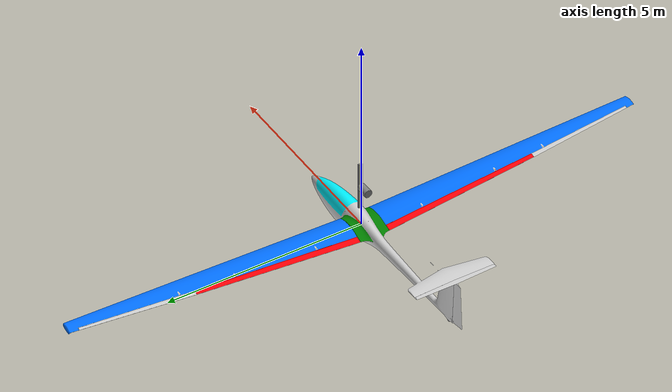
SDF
<?xml version="1.0"?>
<sdf version="1.9">
  <model name="pik_20b_sailplane">
    <link name="base_link">`
      <inertial>
        <!--
          Adjust CoM so glider balances on a transverse line passing
          through the main wing CP.
        -->
        <pose>0.3 0 0 0 0 0</pose>
        <mass>300</mass>
        <inertia>
          <ixx>1574.24</ixx>
          <ixy>0</ixy>
          <ixz>0</ixz>
          <iyy>402.54</iyy>
          <iyz>0</iyz>
          <izz>1912.35</izz>
        </inertia>
      </inertial>

      <collision name="fuselage_collision">
        <pose degrees="true">2.155 0 -0.5 0 0 180</pose>
        <geometry>
          <mesh>
            <uri>model://pik_20b_sailplane/meshes/pik_20b_fuselage_collision.stl</uri>
          </mesh>
        </geometry>
      </collision>

      <collision name="left_wing_collision">
        <pose degrees="true">2.155 0 -0.5 0 0 180</pose>
        <geometry>
          <mesh>
            <uri>model://pik_20b_sailplane/meshes/pik_20b_left_wing_collision.stl</uri>
          </mesh>
        </geometry>
      </collision>
      <collision name="right_wing_collision">
        <pose degrees="true">2.155 0 -0.5 0 0 180</pose>
        <geometry>
          <mesh>
            <uri>model://pik_20b_sailplane/meshes/pik_20b_right_wing_collision.stl</uri>
          </mesh>
        </geometry>
      </collision>

      <visual name="fuselage_visual">
        <pose degrees="true">2.155 0 -0.5 0 0 180</pose>
        <geometry>
          <mesh>
            <uri>model://pik_20b_sailplane/meshes/pik_20b_fuselage.dae</uri>
          </mesh>
        </geometry>
      </visual>
      <visual name="left_wheel_door_visual">
        <pose degrees="true">2.155 0 -0.5 0 0 180</pose>
        <geometry>
          <mesh>
            <uri>model://pik_20b_sailplane/meshes/pik_20b_left_wheel_door.dae</uri>
          </mesh>
        </geometry>
      </visual>
      <visual name="right_wheel_door_visual">
        <pose degrees="true">2.155 0 -0.5 0 0 180</pose>
        <geometry>
          <mesh>
            <uri>model://pik_20b_sailplane/meshes/pik_20b_right_wheel_door.dae</uri>
          </mesh>
        </geometry>
      </visual>

      <visual name="left_wing_visual">
        <pose degrees="true">2.155 0 -0.5 0 0 180</pose>
        <geometry>
          <mesh>
            <uri>model://pik_20b_sailplane/meshes/pik_20b_left_wing.dae</uri>
          </mesh>
        </geometry>
      </visual>
      <visual name="right_wing_visual">
        <pose degrees="true">2.155 0 -0.5 0 0 180</pose>
        <geometry>
          <mesh>
            <uri>model://pik_20b_sailplane/meshes/pik_20b_right_wing.dae</uri>
          </mesh>
        </geometry>
      </visual>

      <!-- CP visuals. -->

      <!-- Sensors. -->
      <sensor name="imu_sensor" type="imu">
        <pose degrees="true">0 0 0 180 0 0</pose>
        <always_on>1</always_on>
        <update_rate>1000.0</update_rate>
      </sensor>
      <sensor name="navsat_sensor" type="navsat">
        <always_on>1</always_on>
        <update_rate>1</update_rate>
      </sensor>

    </link>

    <link name="main_wheel_link">
      <pose degrees="true">0.2627999 0 -0.434233 0 0 0</pose>
      <inertial>
        <mass>5</mass>
        <inertia>
          <ixx>0.044</ixx>
          <ixy>0</ixy>
          <ixz>0</ixz>
          <iyy>0.078</iyy>
          <iyz>0</iyz>
          <izz>0.044</izz>
        </inertia>
      </inertial>
      <visual name="main_wheel_visual">
        <pose degrees="true">1.89220 0 -0.0657670 0 0 180</pose>
        <geometry>
          <mesh>
            <uri>model://pik_20b_sailplane/meshes/pik_20b_main_wheel.dae</uri>
          </mesh>
        </geometry>
      </visual>
      <collision name="main_wheel_collision">
        <pose degrees="true">1.89220 0 -0.0657670 0 0 180</pose>
        <geometry>
          <mesh>
            <uri>model://pik_20b_sailplane/meshes/pik_20b_main_wheel_collision.stl</uri>
          </mesh>
        </geometry>
      </collision>
    </link>
    <joint name="main_wheel_joint" type="revolute">
      <pose>0 0 0 0 0 0</pose>
      <parent>base_link</parent>
      <child>main_wheel_link</child>
      <axis>
        <xyz>0 1 0</xyz>
        <limit>
          <lower>-1.0e-16</lower>
          <upper>1.0e+16</upper>
        </limit>
        <dynamics>
          <damping>0.0001</damping>
        </dynamics>
      </axis>
    </joint>

    <link name="tail_wheel_link">
      <pose>-3.6236 0 -0.0722400 0 0 0</pose>
      <inertial>
        <mass>2</mass>
        <inertia>
          <ixx>0.0023</ixx>
          <ixy>0</ixy>
          <ixz>0</ixz>
          <iyy>0.0042</iyy>
          <iyz>0</iyz>
          <izz>0.0023</izz>
        </inertia>
      </inertial>
      <visual name="tail_wheel_visual">
        <pose degrees="true">5.7786 0 -0.42776 0 0 180</pose>
        <geometry>
          <mesh>
            <uri>model://pik_20b_sailplane/meshes/pik_20b_tail_wheel.dae</uri>
          </mesh>
        </geometry>
      </visual>
      <collision name="tail_wheel_collision">
        <pose degrees="true">5.7786 0 -0.42776 0 0 180</pose>
        <geometry>
          <mesh>
            <uri>model://pik_20b_sailplane/meshes/pik_20b_tail_wheel_collision.stl</uri>
          </mesh>
        </geometry>
      </collision>
    </link>
    <joint name="tail_wheel_joint" type="revolute">
      <pose>0 0 0 0 0 0</pose>
      <parent>base_link</parent>
      <child>tail_wheel_link</child>
      <axis>
        <xyz>0 1 0</xyz>
        <limit>
          <lower>-1.0e-16</lower>
          <upper>1.0e+16</upper>
        </limit>
        <dynamics>
          <damping>0.0001</damping>
        </dynamics>
      </axis>
    </joint>

    <link name="left_flap_link">
      <pose>-0.42 2.5 0.2 0 0 0</pose>
      <inertial>
        <mass>10</mass>
        <inertia>
          <ixx>13.885</ixx>
          <ixy>0</ixy>
          <ixz>0</ixz>
          <iyy>0.111</iyy>
          <iyz>0</iyz>
          <izz>13.970</izz>
        </inertia>
      </inertial>
      <visual name="left_flap_visual">
        <pose degrees="true">2.575 -2.5 -0.7 0 0 180</pose>
        <geometry>
          <mesh>
            <uri>model://pik_20b_sailplane/meshes/pik_20b_left_flap.dae</uri>
          </mesh>
        </geometry>
      </visual>
      <collision name="left_flap_collision">
        <pose degrees="true">2.575 -2.5 -0.7 0 0 180</pose>
        <geometry>
          <mesh>
            <uri>model://pik_20b_sailplane/meshes/pik_20b_left_flap.dae</uri>
          </mesh>
        </geometry>
      </collision>
    </link>
    <joint name="left_flap_joint" type="revolute">
      <pose relative_to="base_link" degrees="true">-0.2675 4.465 0.3 3.0 0 -2.7</pose>
      <parent>base_link</parent>
      <child>left_flap_link</child>
      <axis>
        <xyz>0 1 0</xyz>
        <limit>
          <lower>-1.396263</lower>
          <upper>0.139626</upper>
        </limit>
        <dynamics>
          <damping>0.0001</damping>
        </dynamics>
      </axis>
    </joint>

    <link name="right_flap_link">
      <pose>-0.42 -2.5 0.2 0 0 0</pose>
      <inertial>
        <mass>10</mass>
        <inertia>
          <ixx>13.885</ixx>
          <ixy>0</ixy>
          <ixz>0</ixz>
          <iyy>0.111</iyy>
          <iyz>0</iyz>
          <izz>13.970</izz>
        </inertia>
      </inertial>
      <visual name="right_flap_visual">
        <pose degrees="true">2.575 2.5 -0.7 0 0 180</pose>
        <geometry>
          <mesh>
            <uri>model://pik_20b_sailplane/meshes/pik_20b_right_flap.dae</uri>
          </mesh>
        </geometry>
      </visual>
      <collision name="right_flap_collision">
        <pose degrees="true">2.575 2.5 -0.7 0 0 180</pose>
        <geometry>
          <mesh>
            <uri>model://pik_20b_sailplane/meshes/pik_20b_right_flap.dae</uri>
          </mesh>
        </geometry>
      </collision>
    </link>
    <joint name="right_flap_joint" type="revolute">
      <pose relative_to="base_link" degrees="true">-0.2675 -4.465 0.3 -3.0 0 2.7</pose>
      <parent>base_link</parent>
      <child>right_flap_link</child>
      <axis>
        <xyz>0 1 0</xyz>
        <limit>
          <lower>-1.396263</lower>
          <upper>0.139626</upper>
        </limit>
        <dynamics>
          <damping>0.0001</damping>
        </dynamics>
      </axis>
    </joint>

    <link name="left_aileron_link">
      <pose>-0.22 6.0 0.375 0 0 0</pose>
      <inertial>
        <mass>10</mass>
        <inertia>
          <ixx>6.446</ixx>
          <ixy>0</ixy>
          <ixz>0</ixz>
          <iyy>0.0651</iyy>
          <iyz>0</iyz>
          <izz>6.500</izz>
        </inertia>
      </inertial>
      <visual name="left_aileron_visual">
        <pose degrees="true">2.375 -6.0 -0.875 0 0 180</pose>
        <geometry>
          <mesh>
            <uri>model://pik_20b_sailplane/meshes/pik_20b_left_aileron.dae</uri>
          </mesh>
        </geometry>
      </visual>
      <collision name="left_aileron_collision">
        <pose degrees="true">2.375 -6.0 -0.875 0 0 180</pose>
        <geometry>
          <mesh>
            <uri>model://pik_20b_sailplane/meshes/pik_20b_left_aileron.dae</uri>
          </mesh>
        </geometry>
      </collision>
    </link>
    <joint name="left_aileron_joint" type="revolute">
      <pose relative_to="base_link" degrees="true">-0.2675 4.465 0.3 3.0 0 -3.0</pose>
      <parent>base_link</parent>
      <child>left_aileron_link</child>
      <axis>
        <xyz>0 1 0</xyz>
        <limit>
          <lower>-0.366519</lower>
          <upper>0.418879</upper>
        </limit>
        <dynamics>
          <damping>0.0001</damping>
        </dynamics>
      </axis>
    </joint>

    <link name="right_aileron_link">
      <pose>-0.22 -6.0 0.375 0 0 0</pose>
      <inertial>
        <mass>10</mass>
        <inertia>
          <ixx>6.446</ixx>
          <ixy>0</ixy>
          <ixz>0</ixz>
          <iyy>0.0651</iyy>
          <iyz>0</iyz>
          <izz>6.500</izz>
        </inertia>
      </inertial>
      <visual name="right_aileron_visual">
        <pose degrees="true">2.375 6.0 -0.875 0 0 180</pose>
        <geometry>
          <mesh>
            <uri>model://pik_20b_sailplane/meshes/pik_20b_right_aileron.dae</uri>
          </mesh>
        </geometry>
      </visual>
      <collision name="left_aileron_collision">
        <pose degrees="true">2.375 6.0 -0.875 0 0 180</pose>
        <geometry>
          <mesh>
            <uri>model://pik_20b_sailplane/meshes/pik_20b_right_aileron.dae</uri>
          </mesh>
        </geometry>
      </collision>
    </link>
    <joint name="right_aileron_joint" type="revolute">
      <pose relative_to="base_link" degrees="true">-0.2675 -4.465 0.3 -3.0 0 3.0</pose>
      <parent>base_link</parent>
      <child>right_aileron_link</child>
      <axis>
        <xyz>0 1 0</xyz>
        <limit>
          <lower>-0.366519</lower>
          <upper>0.418879</upper>
        </limit>
        <dynamics>
          <damping>0.0001</damping>
        </dynamics>
      </axis>
    </joint>

    <link name="rudder_link">
        <pose>-3.9 0 0.65 0 0 0</pose>
      <inertial>
        <mass>10</mass>
        <inertia>
          <ixx>1.21</ixx>
          <ixy>0</ixy>
          <ixz>0</ixz>
          <iyy>1.30</iyy>
          <iyz>0</iyz>
          <izz>0.1065</izz>
        </inertia>
      </inertial>
      <visual name="rudder_visual">
        <pose degrees="true">6.055 0 -1.15 0 0 180</pose>
        <geometry>
          <mesh>
            <uri>model://pik_20b_sailplane/meshes/pik_20b_rudder.dae</uri>
          </mesh>
        </geometry>
      </visual>
      <collision name="rudder_collision">
        <pose degrees="true">6.055 0 -1.15 0 0 180</pose>
        <geometry>
          <mesh>
            <uri>model://pik_20b_sailplane/meshes/pik_20b_rudder.dae</uri>
          </mesh>
        </geometry>
      </collision>
    </link>
    <joint name="rudder_joint" type="revolute">
      <pose relative_to="base_link">-3.8286 0 -0.0250 0 0 0</pose>
      <parent>base_link</parent>
      <child>rudder_link</child>
      <axis>
        <xyz>0 0 1</xyz>
        <limit>
          <lower>-0.4712389</lower>
          <upper>0.4712389</upper>
        </limit>
        <dynamics>
          <damping>0.0001</damping>
        </dynamics>
      </axis>
    </joint>

    <link name="elevator_link">
        <pose>-3.84 0 1.195 0 0 0</pose>
      <inertial>
        <mass>10</mass>
        <inertia>
          <ixx>3.5023</ixx>
          <ixy>0</ixy>
          <ixz>0</ixz>
          <iyy>0.0145</iyy>
          <iyz>0</iyz>
          <izz>3.5164</izz>
        </inertia>
      </inertial>
      <visual name="elevator_visual">
        <pose degrees="true">5.995 0 -1.695 0 0 180</pose>
        <geometry>
          <mesh>
            <uri>model://pik_20b_sailplane/meshes/pik_20b_elevator.dae</uri>
          </mesh>
        </geometry>
      </visual>
      <collision name="elevator_collision">
        <pose degrees="true">5.995 0 -1.695 0 0 180</pose>
        <geometry>
          <mesh>
            <uri>model://pik_20b_sailplane/meshes/pik_20b_elevator.dae</uri>
          </mesh>
        </geometry>
      </collision>
    </link>
    <joint name="elevator_joint" type="revolute">
      <pose relative_to="base_link">-3.803 0 1.193 0 0 0</pose>
      <parent>base_link</parent>
      <child>elevator_link</child>
      <axis>
        <xyz>0 1 0</xyz>
        <limit>
          <lower>-0.3490659</lower>
          <upper>0.3490659</upper>
        </limit>
        <dynamics>
          <damping>0.0001</damping>
        </dynamics>
      </axis>
    </joint>

    <link name="engine_link">
      <pose degrees="true">-0.15 0 1.1 0 90 0</pose>
      <inertial>
        <mass>5</mass>
        <inertia>
          <ixx>0.01</ixx>
          <ixy>0</ixy>
          <ixz>0</ixz>
          <iyy>0.01</iyy>
          <iyz>0</iyz>
          <izz>0.01</izz>
        </inertia>
      </inertial>
      <visual name="engine_visual">
        <geometry>
          <cylinder>
            <radius>0.1</radius>
            <length>0.3</length>
          </cylinder>
        </geometry>
        <material>
          <ambient>0.5 0.5 0.5 1</ambient>
          <diffuse>0.5 0.5 0.5 1</diffuse>
          <specular>0.01 0.01 0.01 1</specular>
        </material>
      </visual>
      <collision name="engine_collision">
        <geometry>
          <cylinder>
            <radius>0.1</radius>
            <length>0.3</length>
          </cylinder>
        </geometry>
      </collision>
    </link>
    <joint name="engine_joint" type="revolute">
      <pose>0 0 0 0 0 0</pose>
      <parent>base_link</parent>
      <child>engine_link</child>
      <axis>
        <xyz>0 0 1</xyz>
        <limit>
          <lower>0.0</lower>
          <upper>0.0</upper>
        </limit>
        <dynamics>
          <damping>1.0</damping>
        </dynamics>
      </axis>
    </joint>

    <link name="propeller_link">
      <pose relative_to="engine_link" degrees="true">0 0 0.2 0 0 0</pose>
      <inertial>
        <mass>5</mass>
        <inertia>
          <ixx>0.01</ixx>
          <ixy>0</ixy>
          <ixz>0</ixz>
          <iyy>0.01</iyy>
          <iyz>0</iyz>
          <izz>0.01</izz>
        </inertia>
      </inertial>
      <visual name="propeller_visual">
        <geometry>
          <box>
            <size>1.270 0.1 0.04</size>
          </box>
        </geometry>
        <material>
          <ambient>0.5 0.5 0.5 1</ambient>
          <diffuse>0.5 0.5 0.5 1</diffuse>
          <specular>0.01 0.01 0.01 1</specular>
        </material>
      </visual>
      <collision name="propeller_collision">
        <geometry>
          <cylinder>
            <radius>0.635</radius>
            <length>0.04</length>
          </cylinder>
        </geometry>
      </collision>
    </link>
    <joint name="propeller_joint" type="revolute">
      <pose>0 0 0 0 0 0</pose>
      <parent>engine_link</parent>
      <child>propeller_link</child>
      <axis>
        <xyz>0 0 1</xyz>
        <limit>
          <lower>-1.0e-16</lower>
          <upper>1.0e+16</upper>
        </limit>
        <dynamics>
          <damping>1.0</damping>
        </dynamics>
      </axis>
    </joint>

    <!-- System plugins. -->
    <plugin filename="gz-sim-joint-state-publisher-system"
      name="gz::sim::systems::JointStatePublisher">
    </plugin>

    <!-- Positive is up. -->
    <plugin
      filename="gz-sim-joint-position-controller-system"
      name="gz::sim::systems::JointPositionController">
      <joint_name>left_flap_joint</joint_name>
      <initial_position>0.0</initial_position>
      <topic>/left_flap_joint/cmd_pos</topic>
      <p_gain>100</p_gain>
      <i_gain>30</i_gain>
      <d_gain>20</d_gain>
      <i_max>100</i_max>
      <i_min>-100</i_min>
      <cmd_max>1000</cmd_max>
      <cmd_min>-1000</cmd_min>
    </plugin>

    <!-- Positive is up. -->
    <plugin
      filename="gz-sim-joint-position-controller-system"
      name="gz::sim::systems::JointPositionController">
      <joint_name>right_flap_joint</joint_name>
      <initial_position>0.0</initial_position>
      <topic>/right_flap_joint/cmd_pos</topic>
      <p_gain>100</p_gain>
      <i_gain>30</i_gain>
      <d_gain>20</d_gain>
      <i_max>100</i_max>
      <i_min>-100</i_min>
      <cmd_max>1000</cmd_max>
      <cmd_min>-1000</cmd_min>
    </plugin>

    <!-- Positive is up. -->
    <plugin
      filename="gz-sim-joint-position-controller-system"
      name="gz::sim::systems::JointPositionController">
      <joint_name>left_aileron_joint</joint_name>
      <initial_position>0.0</initial_position>
      <topic>/left_aileron_joint/cmd_pos</topic>
      <p_gain>100</p_gain>
      <i_gain>30</i_gain>
      <d_gain>20</d_gain>
      <i_max>100</i_max>
      <i_min>-100</i_min>
      <cmd_max>1000</cmd_max>
      <cmd_min>-1000</cmd_min>
    </plugin>

    <!-- Positive is up. -->
    <plugin
      filename="gz-sim-joint-position-controller-system"
      name="gz::sim::systems::JointPositionController">
      <joint_name>right_aileron_joint</joint_name>
      <initial_position>0.0</initial_position>
      <topic>/right_aileron_joint/cmd_pos</topic>
      <p_gain>100</p_gain>
      <i_gain>30</i_gain>
      <d_gain>20</d_gain>
      <i_max>100</i_max>
      <i_min>-100</i_min>
      <cmd_max>1000</cmd_max>
      <cmd_min>-1000</cmd_min>
    </plugin>

    <!-- Positive is right. -->
    <plugin
      filename="gz-sim-joint-position-controller-system"
      name="gz::sim::systems::JointPositionController">
      <joint_name>rudder_joint</joint_name>
      <initial_position>0.0</initial_position>
      <topic>/rudder_joint/cmd_pos</topic>
      <p_gain>100</p_gain>
      <i_gain>30</i_gain>
      <d_gain>20</d_gain>
      <i_max>100</i_max>
      <i_min>-100</i_min>
      <cmd_max>1000</cmd_max>
      <cmd_min>-1000</cmd_min>
    </plugin>

    <!-- Positive is up. -->
    <plugin
      filename="gz-sim-joint-position-controller-system"
      name="gz::sim::systems::JointPositionController">
      <joint_name>elevator_joint</joint_name>
      <initial_position>0.0</initial_position>
      <topic>/elevator_joint/cmd_pos</topic>
      <p_gain>100</p_gain>
      <i_gain>30</i_gain>
      <d_gain>20</d_gain>
      <i_max>100</i_max>
      <i_min>-100</i_min>
      <cmd_max>1000</cmd_max>
      <cmd_min>-1000</cmd_min>
    </plugin>

    <!-- Positive is forward. -->
    <plugin
      filename="gz-sim-thruster-system"
      name="gz::sim::systems::Thruster">
      <namespace>pik_20b_sailplane</namespace>
      <joint_name>propeller_joint</joint_name>
      <thrust_coefficient>0.001</thrust_coefficient>
      <fluid_density>1.2041</fluid_density>
      <propeller_diameter>1.270</propeller_diameter>
      <use_angvel_cmd>1</use_angvel_cmd>
      <max_thrust_cmd>1000.0</max_thrust_cmd>
      <min_thrust_cmd>0.0</min_thrust_cmd>
    </plugin>

    <!-- fuselage: bluff drag -->
    <plugin filename="gz-sim-lift-drag-system"
        name="gz::sim::systems::LiftDrag">
      <a0>0</a0>
      <cla>0</cla>
      <cda>0.5</cda>
      <cma>0</cma>
      <alpha_stall>0.1250</alpha_stall>
      <cla_stall>0</cla_stall>
      <cda_stall>0.5</cda_stall>
      <cma_stall>0</cma_stall>
      <cp>0 0 0</cp>
      <area>5.0</area>
      <air_density>1.2041</air_density>
      <forward>1 0 0</forward>
      <upward>0 0 1</upward>
      <link_name>base_link</link_name>
    </plugin>

    <!-- left wing: xf_fx67k170_il_1000000 -->
    <plugin filename="gz-sim-lift-drag-system"
        name="gz::sim::systems::LiftDrag">
      <a0>0.0900</a0>
      <cla>6.1000</cla>
      <cda>0.0700</cda>
      <cma>0.0000</cma>
      <alpha_stall>0.1250</alpha_stall>
      <cla_stall>-3.0000</cla_stall>
      <cda_stall>0.5000</cda_stall>
      <cma_stall>0.0000</cma_stall>
      <cp>-0.03 3.0 0.25</cp>
      <area>5.0</area>
      <air_density>1.2041</air_density>
      <forward>1 0 0</forward>
      <upward>0 0 1</upward>
      <link_name>base_link</link_name>
    </plugin>

    <!-- right wing: xf_fx67k170_il_1000000 -->
    <plugin filename="gz-sim-lift-drag-system"
        name="gz::sim::systems::LiftDrag">
      <a0>0.0900</a0>
      <cla>6.1000</cla>
      <cda>0.0700</cda>
      <cma>0.0000</cma>
      <alpha_stall>0.1250</alpha_stall>
      <cla_stall>-3.0000</cla_stall>
      <cda_stall>0.5000</cda_stall>
      <cma_stall>0.0000</cma_stall>
      <cp>-0.03 -3.0 0.25</cp>
      <area>5.0</area>
      <air_density>1.2041</air_density>
      <forward>1 0 0</forward>
      <upward>0 0 1</upward>
      <link_name>base_link</link_name>
    </plugin>

    <!-- left_flap -->

    <!-- right_flap -->

    <!-- left_aileron: xf_fx67k170_il_1000000 -->
    <plugin filename="gz-sim-lift-drag-system"
        name="gz::sim::systems::LiftDrag">
      <a0>0.0900</a0>
      <cla>6.1000</cla>
      <cda>0.0700</cda>
      <cma>0.0000</cma>
      <alpha_stall>0.1250</alpha_stall>
      <cla_stall>-3.0000</cla_stall>
      <cda_stall>0.5000</cda_stall>
      <cma_stall>0.0000</cma_stall>
      <cp>-0.22 6.0 0.375</cp>
      <area>0.75</area>
      <air_density>1.2041</air_density>
      <forward>1 0 0</forward>
      <upward>0 0 1</upward>
      <link_name>base_link</link_name>
      <control_joint_name>left_aileron_joint</control_joint_name>
      <control_joint_rad_to_cl>-4.0</control_joint_rad_to_cl>
    </plugin>

    <!-- right_aileron: xf_fx67k170_il_1000000 -->
    <plugin filename="gz-sim-lift-drag-system"
        name="gz::sim::systems::LiftDrag">
      <a0>0.0900</a0>
      <cla>6.1000</cla>
      <cda>0.0700</cda>
      <cma>0.0000</cma>
      <alpha_stall>0.1250</alpha_stall>
      <cla_stall>-3.0000</cla_stall>
      <cda_stall>0.5000</cda_stall>
      <cma_stall>0.0000</cma_stall>
      <cp>-0.22 -6.0 0.375</cp>
      <area>0.75</area>
      <air_density>1.2041</air_density>
      <forward>1 0 0</forward>
      <upward>0 0 1</upward>
      <link_name>base_link</link_name>
      <control_joint_name>right_aileron_joint</control_joint_name>
      <control_joint_rad_to_cl>-4.0</control_joint_rad_to_cl>
    </plugin>

    <!-- horizontal stabiliser: xf_fx711520_il_1000000 -->
    <plugin filename="gz-sim-lift-drag-system"
        name="gz::sim::systems::LiftDrag">
      <a0>0.0000</a0>
      <cla>6.1000</cla>
      <cda>0.1500</cda>
      <cma>0.0000</cma>
      <alpha_stall>0.2500</alpha_stall>
      <cla_stall>-6.0000</cla_stall>
      <cda_stall>1.5000</cda_stall>
      <cma_stall>0.0000</cma_stall>
      <cp>-3.55 0 1.18</cp>
      <area>1.25</area>
      <air_density>1.2041</air_density>
      <forward>1 0 0</forward>
      <upward>0 0 1</upward>
      <link_name>base_link</link_name>
    </plugin>

    <!-- elevator: xf_fx711520_il_1000000 -->
    <plugin filename="gz-sim-lift-drag-system"
        name="gz::sim::systems::LiftDrag">
      <a0>0.0000</a0>
      <cla>6.1000</cla>
      <cda>0.1500</cda>
      <cma>0.0000</cma>
      <alpha_stall>0.2500</alpha_stall>
      <cla_stall>-6.0000</cla_stall>
      <cda_stall>1.5000</cda_stall>
      <cma_stall>0.0000</cma_stall>
      <cp>-3.84 0 1.195</cp>
      <area>0.27</area>
      <air_density>1.2041</air_density>
      <forward>1 0 0</forward>
      <upward>0 0 1</upward>
      <link_name>base_link</link_name>
      <control_joint_name>elevator_joint</control_joint_name>
      <control_joint_rad_to_cl>-7.0</control_joint_rad_to_cl>
    </plugin>

    <!-- vertical stabiliser: xf_fx711520_il_1000000 -->
    <plugin filename="gz-sim-lift-drag-system"
        name="gz::sim::systems::LiftDrag">
      <a0>0.0000</a0>
      <cla>6.1000</cla>
      <cda>0.1500</cda>
      <cma>0.0000</cma>
      <alpha_stall>0.2500</alpha_stall>
      <cla_stall>-6.0000</cla_stall>
      <cda_stall>1.5000</cda_stall>
      <cma_stall>0.0000</cma_stall>
      <cp>-3.55 0 0.65</cp>
      <area>1.02</area>
      <air_density>1.2041</air_density>
      <forward>1 0 0</forward>
      <upward>0 1 0</upward>
      <link_name>base_link</link_name>
    </plugin>

    <!-- rudder: xf_fx711520_il_1000000 -->
    <plugin filename="gz-sim-lift-drag-system"
        name="gz::sim::systems::LiftDrag">
      <a0>0.0000</a0>
      <cla>6.1000</cla>
      <cda>0.1500</cda>
      <cma>0.0000</cma>
      <alpha_stall>0.2500</alpha_stall>
      <cla_stall>-6.0000</cla_stall>
      <cda_stall>1.5000</cda_stall>
      <cma_stall>0.0000</cma_stall>
      <cp>-3.9 0 0.65</cp>
      <area>0.42</area>
      <air_density>1.2041</air_density>
      <forward>1 0 0</forward>
      <upward>0 1 0</upward>
      <link_name>base_link</link_name>
      <control_joint_name>rudder_joint</control_joint_name>
      <control_joint_rad_to_cl>2.0</control_joint_rad_to_cl>
    </plugin>

    <plugin name="ArduPilotPlugin"
      filename="ArduPilotPlugin">
      <!-- Port settings. -->
      <fdm_addr>127.0.0.1</fdm_addr>
      <fdm_port_in>9002</fdm_port_in>
      <connectionTimeoutMaxCount>5</connectionTimeoutMaxCount>
      <lock_step>1</lock_step>
      <have_32_channels>0</have_32_channels>

      <!-- Frame transforms.-->
      <modelXYZToAirplaneXForwardZDown>0 0 0 3.141593 0 0</modelXYZToAirplaneXForwardZDown>
      <gazeboXYZToNED>0 0 0 3.141593 0 1.57079632</gazeboXYZToNED>

      <!-- Sensors. -->
      <imuName>base_link::imu_sensor</imuName>

      <control channel="0">
        <jointName>left_aileron_joint</jointName>
        <multiplier>-0.8377580409572782</multiplier>
        <offset>-0.5</offset>
        <servo_min>1000</servo_min>
        <servo_max>2000</servo_max>
        <type>COMMAND</type>
        <cmd_topic>/left_aileron_joint/cmd_pos</cmd_topic>
      </control>

      <control channel="0">
        <jointName>right_aileron_joint</jointName>
        <multiplier>0.8377580409572782</multiplier>
        <offset>-0.5</offset>
        <servo_min>1000</servo_min>
        <servo_max>2000</servo_max>
        <type>COMMAND</type>
        <cmd_topic>/right_aileron_joint/cmd_pos</cmd_topic>
      </control>

      <!--
          SERVO2_FUNCTION   19 (Elevator)
          SERVO2_MAX        2000
          SERVO2_MIN        1000
          SERVO2_REVERSED   0
          SERVO2_TRIM       1500
       -->
      <control channel="1">
        <jointName>elevator_joint</jointName>
        <multiplier>0.6981317007977318</multiplier>
        <offset>-0.5</offset>
        <servo_min>1000</servo_min>
        <servo_max>2000</servo_max>
        <type>COMMAND</type>
        <cmd_topic>/elevator_joint/cmd_pos</cmd_topic>
      </control>

      <!--
          SERVO3_FUNCTION   70 (Throttle)
          SERVO3_MAX        2000
          SERVO3_MIN        1000
          SERVO3_REVERSED   0
          SERVO3_TRIM       1000
       -->
      <control channel="2">
        <jointName>propeller_joint</jointName>
        <multiplier>712</multiplier>
        <offset>0</offset>
        <servo_min>1000</servo_min>
        <servo_max>2000</servo_max>
        <type>COMMAND</type>
        <cmd_topic>/model/pik_20b_sailplane/joint/propeller_joint/cmd_vel</cmd_topic>
      </control>

      <!--
          SERVO4_FUNCTION   21 (Rudder)
          SERVO4_MAX        2000
          SERVO4_MIN        1000
          SERVO4_REVERSED   0
          SERVO4_TRIM       1500
       -->
      <control channel="3">
        <jointName>rudder_joint</jointName>
        <multiplier>0.9424777960769379</multiplier>
        <offset>-0.5</offset>
        <servo_min>1000</servo_min>
        <servo_max>2000</servo_max>
        <type>COMMAND</type>
        <cmd_topic>/rudder_joint/cmd_pos</cmd_topic>
      </control>

    </plugin>

    <!--
      Wing supports with wheels
        - locate on the CP line for determining nose - tail balance
        - locate forward of CP to stabilise takeoff
    -->

  </model>
</sdf>
